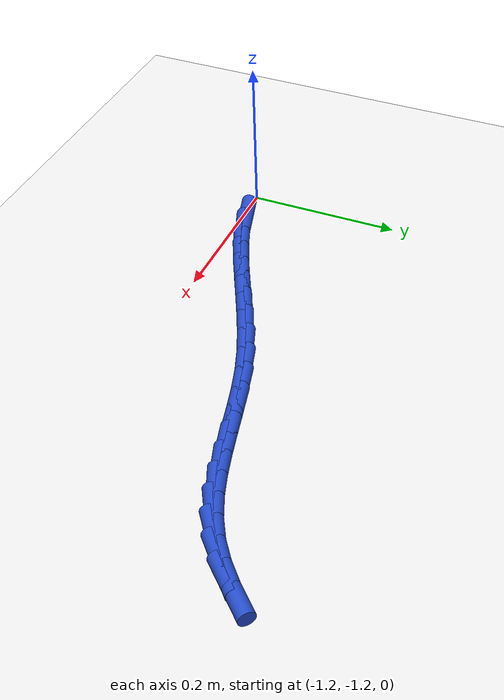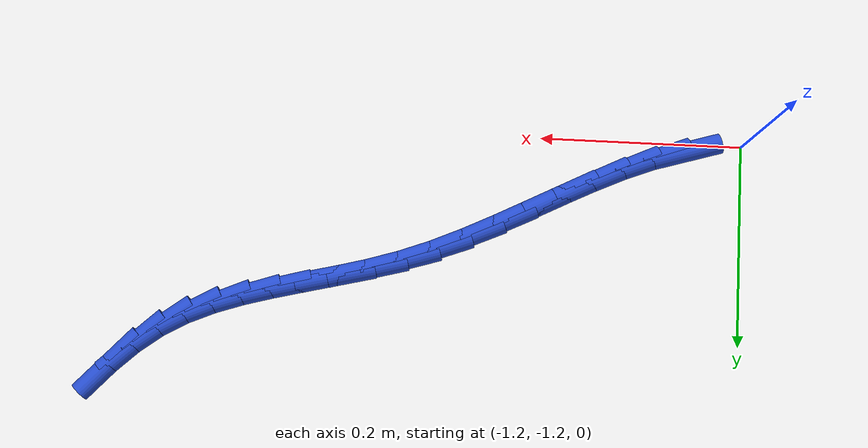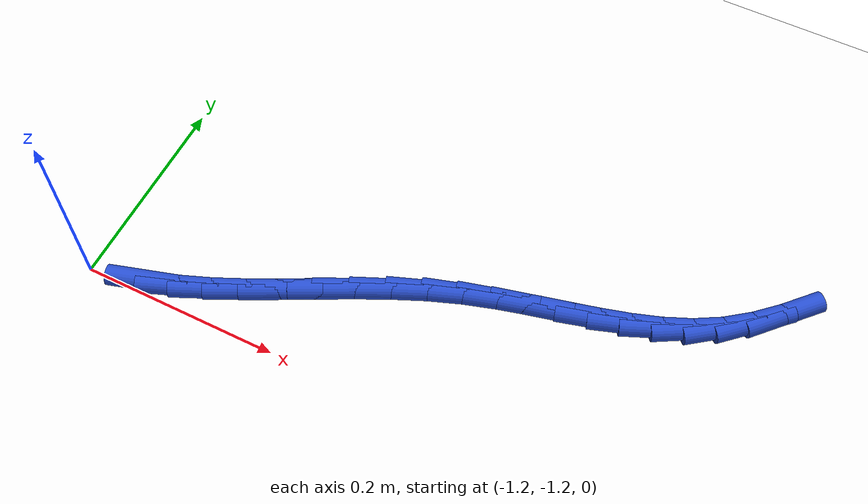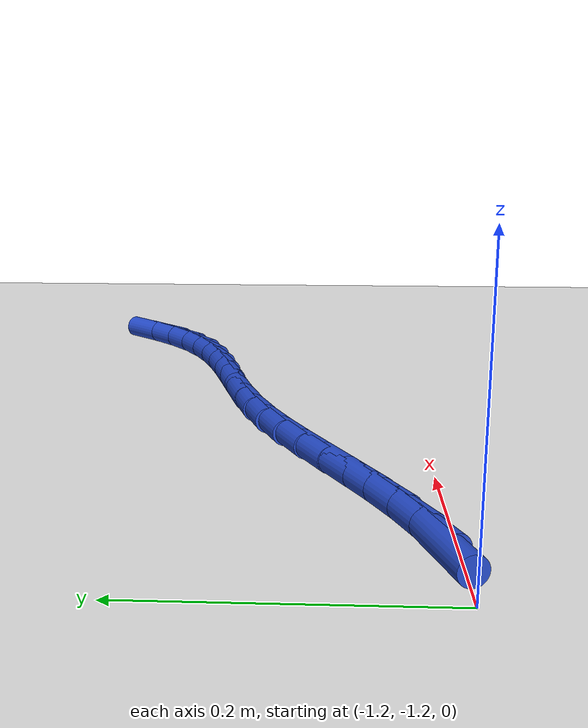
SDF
<sdf version="1.6">
 <world name="default">
  <model name="ground_plane">
   <static>1</static>
   <link name="link">
    <collision name="collision">
     <geometry><plane><normal>0 0 1</normal><size>100 100</size></plane></geometry>
     <surface><friction><ode><mu>100</mu><mu2>50</mu2></ode></friction></surface>
    </collision>
    <visual name="visual">
     <cast_shadows>0</cast_shadows>
     <geometry><plane><normal>0 0 1</normal><size>100 100</size></plane></geometry>
     <material>
      <script><uri>file://media/materials/scripts/gazebo.material</uri><name>Gazebo/WhiteGlow</name></script>
     </material>
    </visual>
   </link>
  </model>
  <model name="line">
   <link name="link_173">
    <pose>-1.138732018749776 -1.1897235905531955 0.01 0 1.57 0.28820469372179996</pose>
    <collision name="collision">
     <geometry><cylinder><radius>0.01</radius><length>0.08</length></cylinder></geometry>
    </collision>
    <visual name="visual">
     <material>
      <script><name>Gazebo/Blue</name><uri>file://media/materials/scripts/gazebo.material</uri></script>
     </material>
     <geometry><cylinder><radius>0.01</radius><length>0.08</length></cylinder></geometry>
    </visual>
   </link>
   <link name="link_174">
    <pose>-1.1103765128847347 -1.181317355486778 0.01 0 1.57 0.3700539348172134</pose>
    <collision name="collision">
     <geometry><cylinder><radius>0.01</radius><length>0.08</length></cylinder></geometry>
    </collision>
    <visual name="visual">
     <material>
      <script><name>Gazebo/Blue</name><uri>file://media/materials/scripts/gazebo.material</uri></script>
     </material>
     <geometry><cylinder><radius>0.01</radius><length>0.08</length></cylinder></geometry>
    </visual>
   </link>
   <link name="link_175">
    <pose>-1.0813153534530617 -1.1700437990646682 0.01 0 1.57 0.42521259030215625</pose>
    <collision name="collision">
     <geometry><cylinder><radius>0.01</radius><length>0.08</length></cylinder></geometry>
    </collision>
    <visual name="visual">
     <material>
      <script><name>Gazebo/Blue</name><uri>file://media/materials/scripts/gazebo.material</uri></script>
     </material>
     <geometry><cylinder><radius>0.01</radius><length>0.08</length></cylinder></geometry>
    </visual>
   </link>
   <link name="link_176">
    <pose>-1.0516362311874223 -1.1566039257401566 0.01 0 1.57 0.45835023734961466</pose>
    <collision name="collision">
     <geometry><cylinder><radius>0.01</radius><length>0.08</length></cylinder></geometry>
    </collision>
    <visual name="visual">
     <material>
      <script><name>Gazebo/Blue</name><uri>file://media/materials/scripts/gazebo.material</uri></script>
     </material>
     <geometry><cylinder><radius>0.01</radius><length>0.08</length></cylinder></geometry>
    </visual>
   </link>
   <link name="link_177">
    <pose>-1.021426836820479 -1.1416987399665335 0.01 0 1.57 0.4725726812684255</pose>
    <collision name="collision">
     <geometry><cylinder><radius>0.01</radius><length>0.08</length></cylinder></geometry>
    </collision>
    <visual name="visual">
     <material>
      <script><name>Gazebo/Blue</name><uri>file://media/materials/scripts/gazebo.material</uri></script>
     </material>
     <geometry><cylinder><radius>0.01</radius><length>0.08</length></cylinder></geometry>
    </visual>
   </link>
   <link name="link_178">
    <pose>-0.9907748610848964 -1.1260292461970902 0.01 0 1.57 0.4695478456910727</pose>
    <collision name="collision">
     <geometry><cylinder><radius>0.01</radius><length>0.08</length></cylinder></geometry>
    </collision>
    <visual name="visual">
     <material>
      <script><name>Gazebo/Blue</name><uri>file://media/materials/scripts/gazebo.material</uri></script>
     </material>
     <geometry><cylinder><radius>0.01</radius><length>0.08</length></cylinder></geometry>
    </visual>
   </link>
   <link name="link_179">
    <pose>-0.9597679947133361 -1.110296448885116 0.01 0 1.57 0.4496888505913674</pose>
    <collision name="collision">
     <geometry><cylinder><radius>0.01</radius><length>0.08</length></cylinder></geometry>
    </collision>
    <visual name="visual">
     <material>
      <script><name>Gazebo/Blue</name><uri>file://media/materials/scripts/gazebo.material</uri></script>
     </material>
     <geometry><cylinder><radius>0.01</radius><length>0.08</length></cylinder></geometry>
    </visual>
   </link>
   <link name="link_180">
    <pose>-0.9284939284384642 -1.0952013524839024 0.01 0 1.57 0.4122890650855376</pose>
    <collision name="collision">
     <geometry><cylinder><radius>0.01</radius><length>0.08</length></cylinder></geometry>
    </collision>
    <visual name="visual">
     <material>
      <script><name>Gazebo/Blue</name><uri>file://media/materials/scripts/gazebo.material</uri></script>
     </material>
     <geometry><cylinder><radius>0.01</radius><length>0.08</length></cylinder></geometry>
    </visual>
   </link>
   <link name="link_181">
    <pose>-0.8970403529929432 -1.0814449614467394 0.01 0 1.57 0.3561059196680988</pose>
    <collision name="collision">
     <geometry><cylinder><radius>0.01</radius><length>0.08</length></cylinder></geometry>
    </collision>
    <visual name="visual">
     <material>
      <script><name>Gazebo/Blue</name><uri>file://media/materials/scripts/gazebo.material</uri></script>
     </material>
     <geometry><cylinder><radius>0.01</radius><length>0.08</length></cylinder></geometry>
    </visual>
   </link>
   <link name="link_182">
    <pose>-0.8654965294022999 -1.0697118089717994 0.01 0 1.57 0.2964790145167541</pose>
    <collision name="collision">
     <geometry><cylinder><radius>0.01</radius><length>0.08</length></cylinder></geometry>
    </collision>
    <visual name="visual">
     <material>
      <script><name>Gazebo/Blue</name><uri>file://media/materials/scripts/gazebo.material</uri></script>
     </material>
     <geometry><cylinder><radius>0.01</radius><length>0.08</length></cylinder></geometry>
    </visual>
   </link>
   <link name="link_183">
    <pose>-0.8340083208878497 -1.0600927114869894 0.01 0 1.57 0.25567239197879216</pose>
    <collision name="collision">
     <geometry><cylinder><radius>0.01</radius><length>0.08</length></cylinder></geometry>
    </collision>
    <visual name="visual">
     <material>
      <script><name>Gazebo/Blue</name><uri>file://media/materials/scripts/gazebo.material</uri></script>
     </material>
     <geometry><cylinder><radius>0.01</radius><length>0.08</length></cylinder></geometry>
    </visual>
   </link>
   <link name="link_184">
    <pose>-0.8027926471481482 -1.0519331535194585 0.01 0 1.57 0.23642533932271614</pose>
    <collision name="collision">
     <geometry><cylinder><radius>0.01</radius><length>0.08</length></cylinder></geometry>
    </collision>
    <visual name="visual">
     <material>
      <script><name>Gazebo/Blue</name><uri>file://media/materials/scripts/gazebo.material</uri></script>
     </material>
     <geometry><cylinder><radius>0.01</radius><length>0.08</length></cylinder></geometry>
    </visual>
   </link>
   <link name="link_185">
    <pose>-0.7720709359842027 -1.0445313328084658 0.01 0 1.57 0.2400892288135936</pose>
    <collision name="collision">
     <geometry><cylinder><radius>0.01</radius><length>0.08</length></cylinder></geometry>
    </collision>
    <visual name="visual">
     <material>
      <script><name>Gazebo/Blue</name><uri>file://media/materials/scripts/gazebo.material</uri></script>
     </material>
     <geometry><cylinder><radius>0.01</radius><length>0.08</length></cylinder></geometry>
    </visual>
   </link>
   <link name="link_186">
    <pose>-0.7420646151970185 -1.0371854470932698 0.01 0 1.57 0.268290724938909</pose>
    <collision name="collision">
     <geometry><cylinder><radius>0.01</radius><length>0.08</length></cylinder></geometry>
    </collision>
    <visual name="visual">
     <material>
      <script><name>Gazebo/Blue</name><uri>file://media/materials/scripts/gazebo.material</uri></script>
     </material>
     <geometry><cylinder><radius>0.01</radius><length>0.08</length></cylinder></geometry>
    </visual>
   </link>
   <link name="link_187">
    <pose>-0.7129951125876015 -1.0291936941131297 0.01 0 1.57 0.3229003037167604</pose>
    <collision name="collision">
     <geometry><cylinder><radius>0.01</radius><length>0.08</length></cylinder></geometry>
    </collision>
    <visual name="visual">
     <material>
      <script><name>Gazebo/Blue</name><uri>file://media/materials/scripts/gazebo.material</uri></script>
     </material>
     <geometry><cylinder><radius>0.01</radius><length>0.08</length></cylinder></geometry>
    </visual>
   </link>
   <link name="link_188">
    <pose>-0.6850838559569565 -1.0198542716073034 0.01 0 1.57 0.40547167975999754</pose>
    <collision name="collision">
     <geometry><cylinder><radius>0.01</radius><length>0.08</length></cylinder></geometry>
    </collision>
    <visual name="visual">
     <material>
      <script><name>Gazebo/Blue</name><uri>file://media/materials/scripts/gazebo.material</uri></script>
     </material>
     <geometry><cylinder><radius>0.01</radius><length>0.08</length></cylinder></geometry>
    </visual>
   </link>
   <link name="link_189">
    <pose>-0.6585522731060914 -1.0084653773150507 0.01 0 1.57 0.515938735192401</pose>
    <collision name="collision">
     <geometry><cylinder><radius>0.01</radius><length>0.08</length></cylinder></geometry>
    </collision>
    <visual name="visual">
     <material>
      <script><name>Gazebo/Blue</name><uri>file://media/materials/scripts/gazebo.material</uri></script>
     </material>
     <geometry><cylinder><radius>0.01</radius><length>0.08</length></cylinder></geometry>
    </visual>
   </link>
   <link name="link_190">
    <pose>-0.6336217713131572 -0.994325254071478 0.01 0 1.57 0.6409306912699716</pose>
    <collision name="collision">
     <geometry><cylinder><radius>0.01</radius><length>0.08</length></cylinder></geometry>
    </collision>
    <visual name="visual">
     <material>
      <script><name>Gazebo/Blue</name><uri>file://media/materials/scripts/gazebo.material</uri></script>
     </material>
     <geometry><cylinder><radius>0.01</radius><length>0.08</length></cylinder></geometry>
    </visual>
   </link>
   <link name="link_191">
    <pose>-0.6103932385876444 -0.9769969674586381 0.01 0 1.57 0.7432764161646167</pose>
    <collision name="collision">
     <geometry><cylinder><radius>0.01</radius><length>0.08</length></cylinder></geometry>
    </collision>
    <visual name="visual">
     <material>
      <script><name>Gazebo/Blue</name><uri>file://media/materials/scripts/gazebo.material</uri></script>
     </material>
     <geometry><cylinder><radius>0.01</radius><length>0.08</length></cylinder></geometry>
    </visual>
   </link>
   <link name="link_192">
    <pose>-0.5885630305105596 -0.9569324814905934 0.01 0 1.57 0.8166125203997856</pose>
    <collision name="collision">
     <geometry><cylinder><radius>0.01</radius><length>0.08</length></cylinder></geometry>
    </collision>
    <visual name="visual">
     <material>
      <script><name>Gazebo/Blue</name><uri>file://media/materials/scripts/gazebo.material</uri></script>
     </material>
     <geometry><cylinder><radius>0.01</radius><length>0.08</length></cylinder></geometry>
    </visual>
   </link>
  </model>
 </world>
</sdf>
